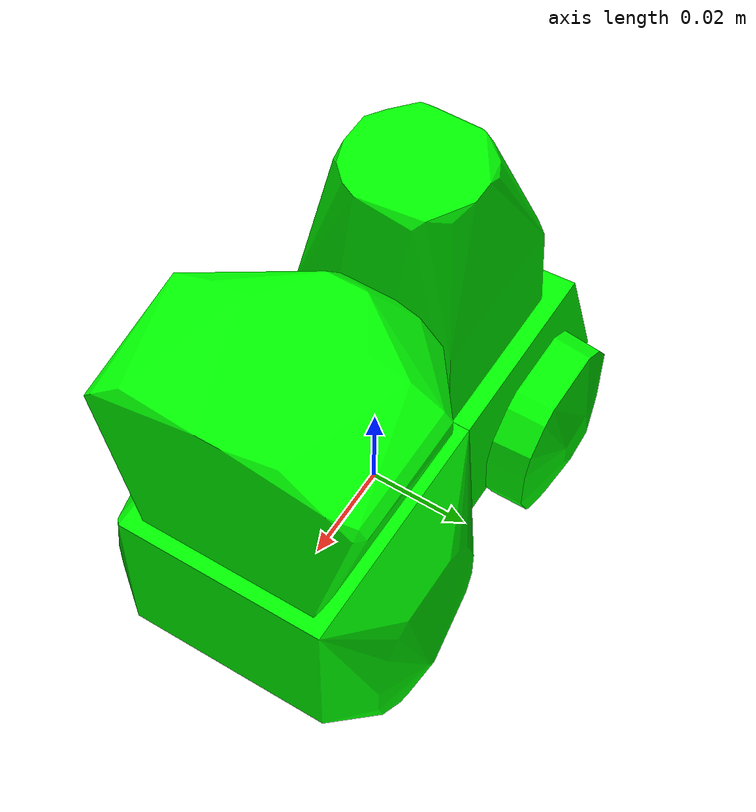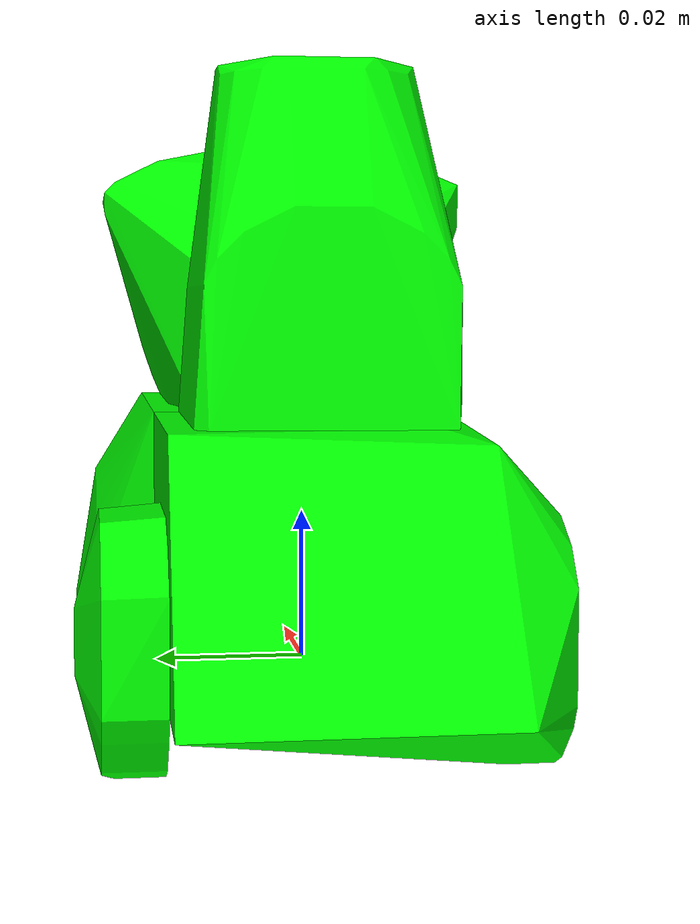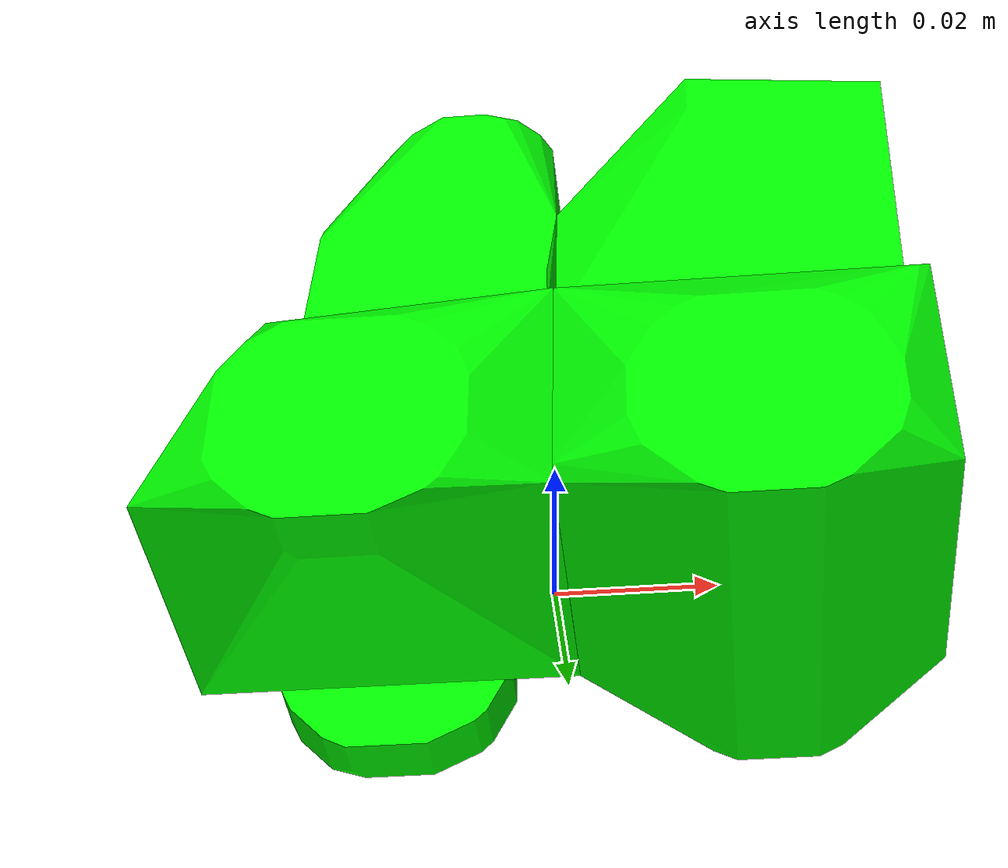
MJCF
<mujoco model="train">

    <asset>
        <mesh name="train" file="../meshes/grab/train/train.stl" scale="1 1 1" />
        <mesh name="contact0" file="../meshes/grab/train/contact0.stl" scale="1 1 1" />
        <mesh name="contact1" file="../meshes/grab/train/contact1.stl" scale="1 1 1" />
        <mesh name="contact2" file="../meshes/grab/train/contact2.stl" scale="1 1 1" />
        <mesh name="contact3" file="../meshes/grab/train/contact3.stl" scale="1 1 1" />
        <mesh name="contact4" file="../meshes/grab/train/contact4.stl" scale="1 1 1" />
    </asset>

    <worldbody>
        <body name="object" pos="0.00 0.0 0.035" >
            <!--geom name="train_visual" type="mesh" contype="0" conaffinity="0" mass="0" group="1" material="MatObject" mesh="train" rgba="1 0 0 1.0" /-->
            <geom name="train_contact0" density="1250" type="mesh" mesh="contact0" condim="4" rgba="0 1 0 1" />
            <geom name="train_contact1" density="1250" type="mesh" mesh="contact1" condim="4" rgba="0 1 0 1" />
            <geom name="train_contact2" density="1250" type="mesh" mesh="contact2" condim="4" rgba="0 1 0 1" />
            <geom name="train_contact3" density="1250" type="mesh" mesh="contact3" condim="4" rgba="0 1 0 1" />
            <geom name="train_contact4" density="1250" type="mesh" mesh="contact4" condim="4" rgba="0 1 0 1" />
        </body>
    </worldbody>
</mujoco>
